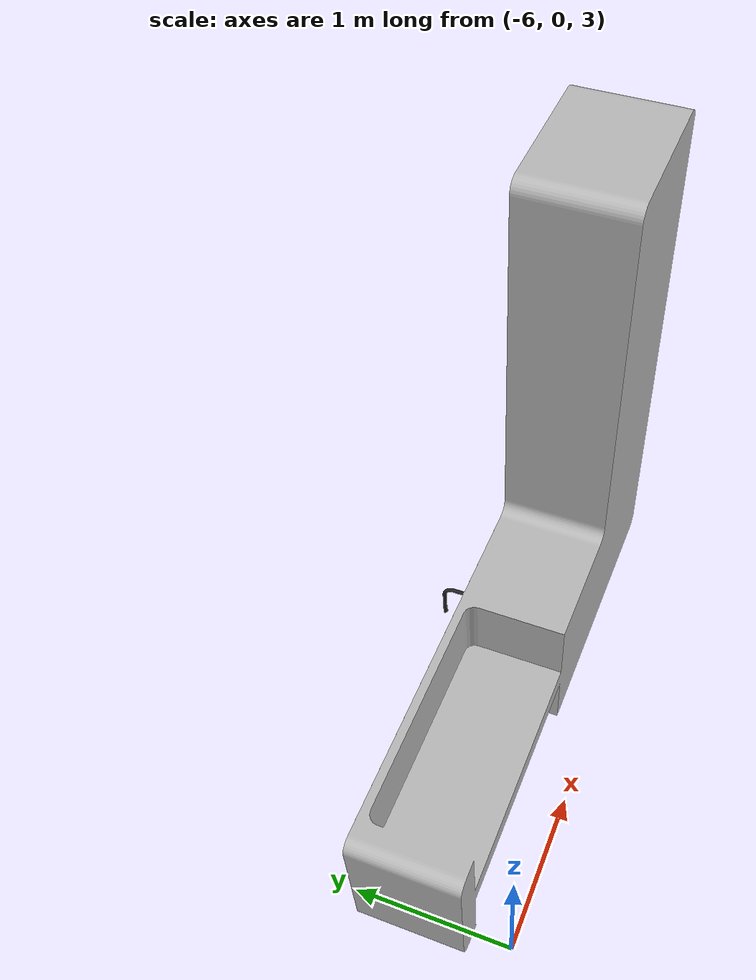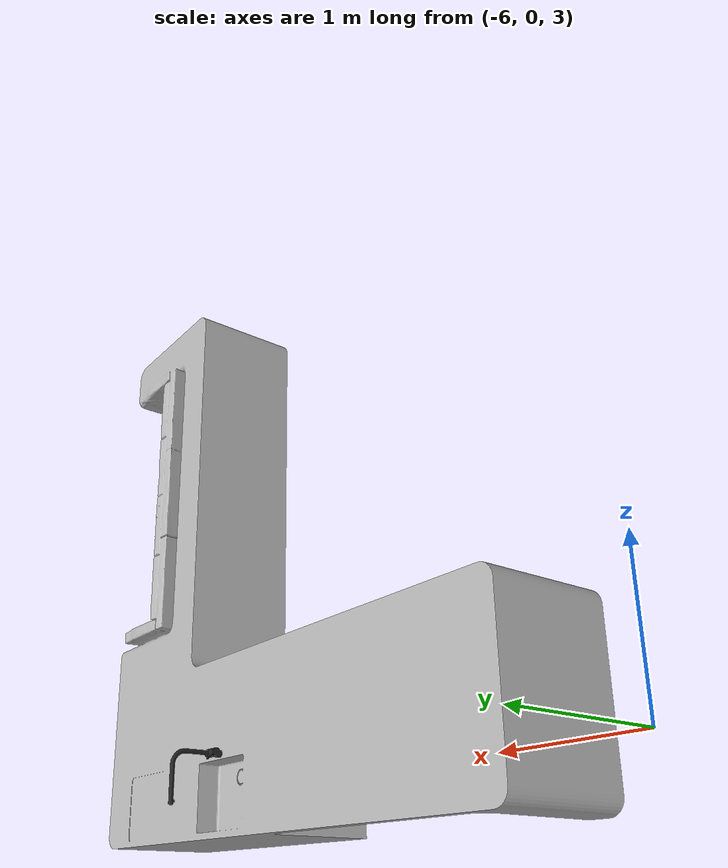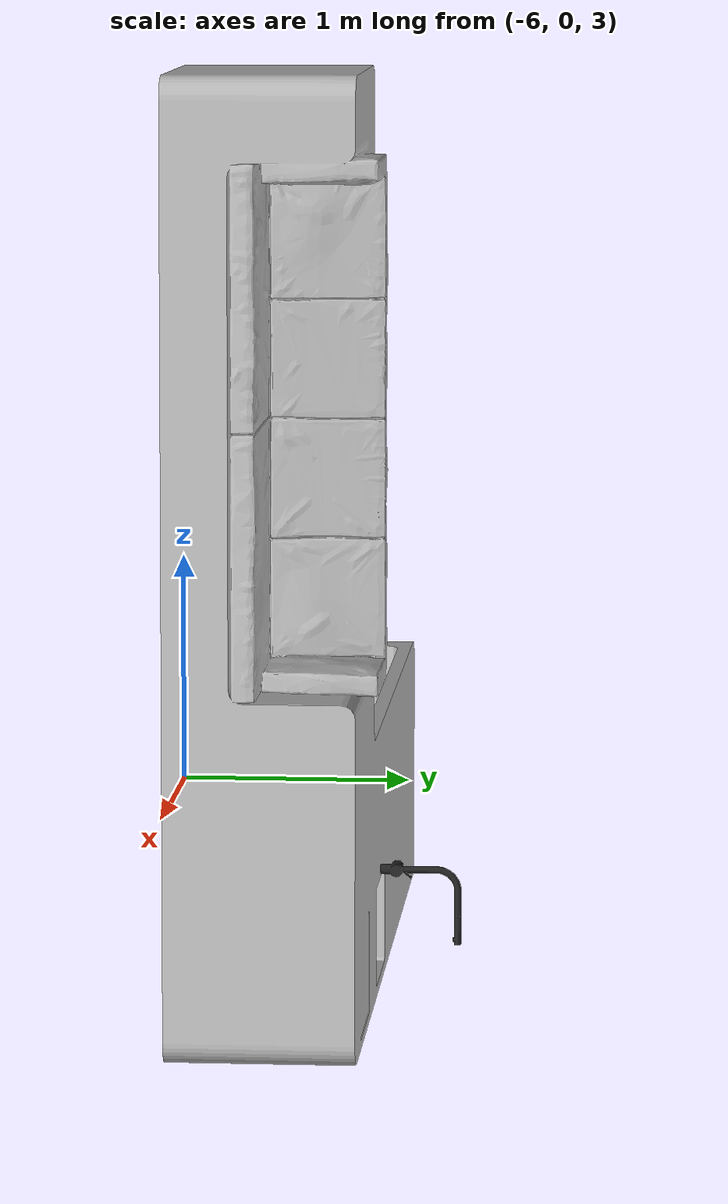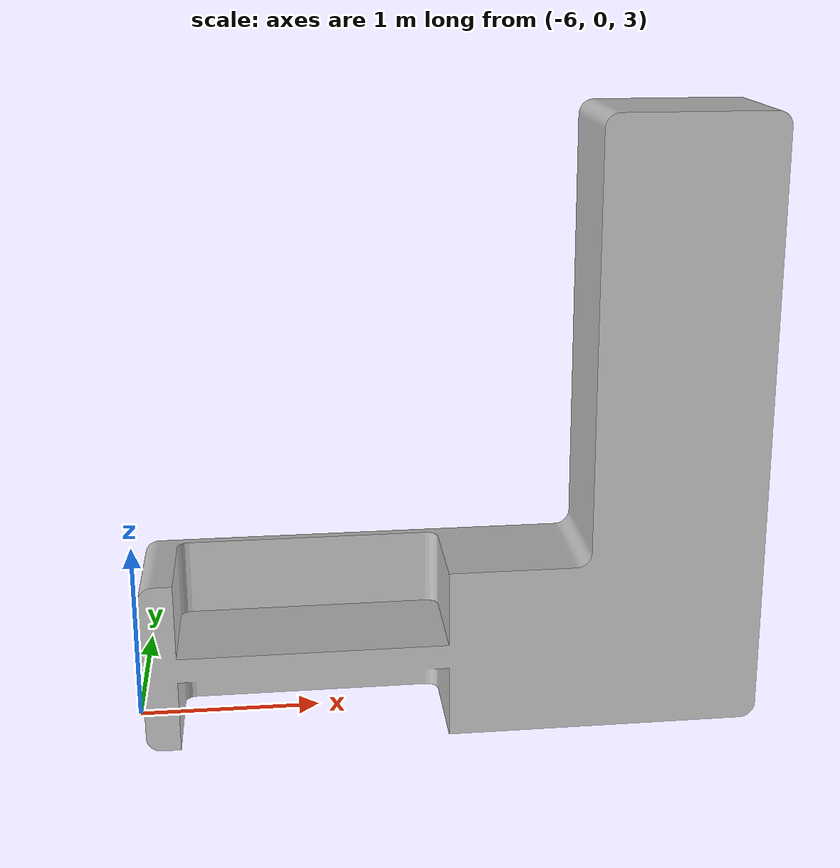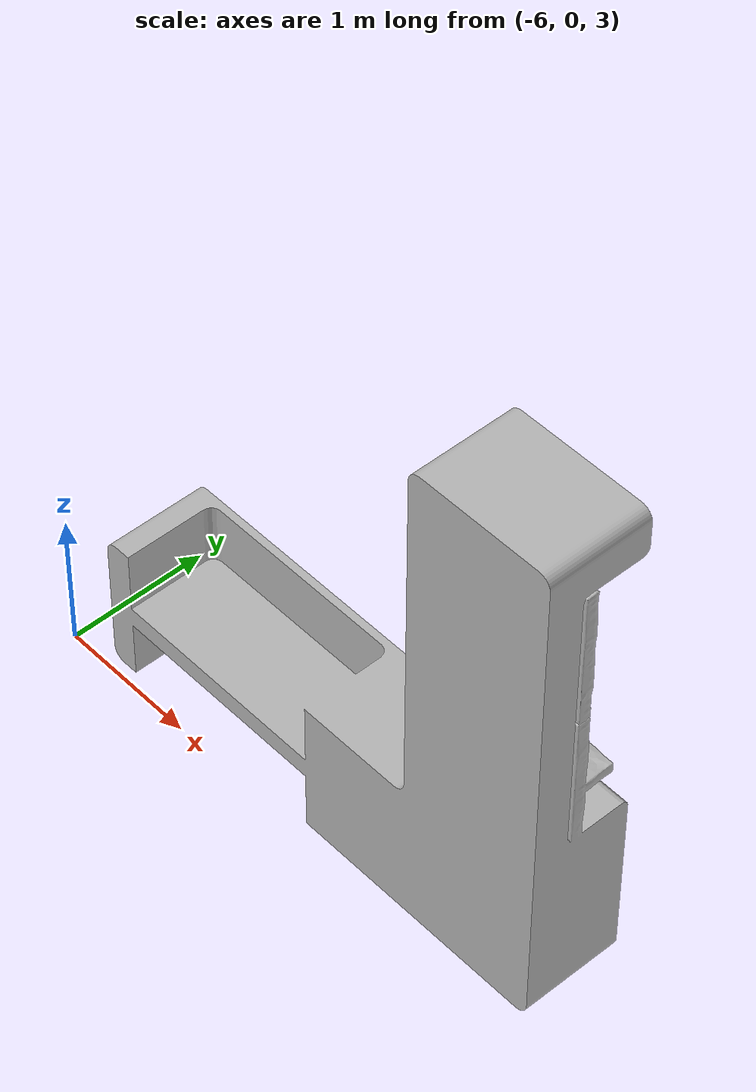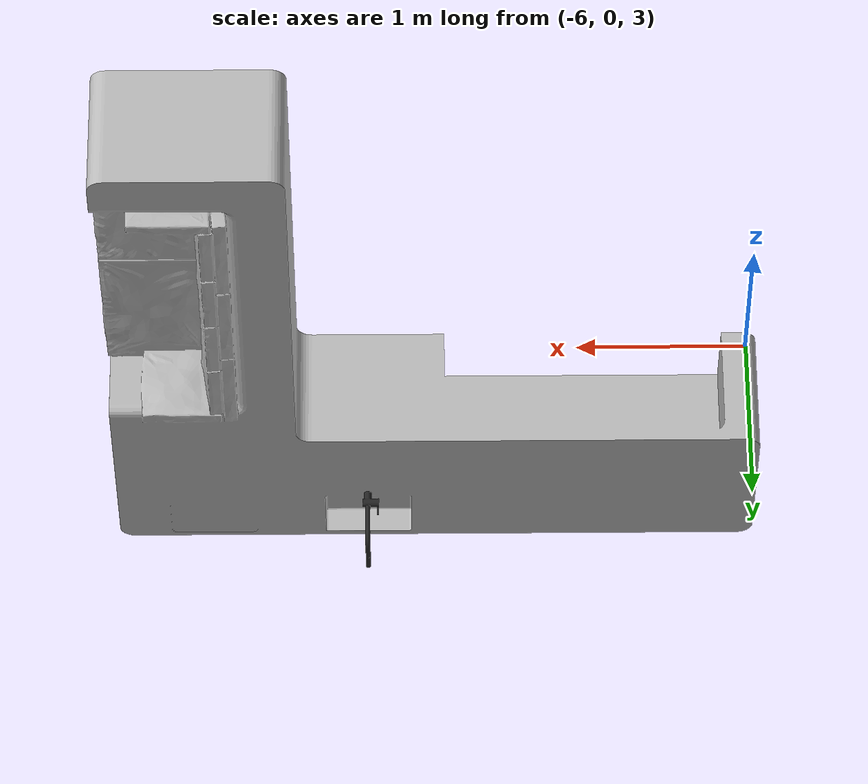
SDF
<?xml version="1.0" ?>
<sdf version="1.4">
    <model name="centralunit">
      <static>true</static>
      <!-- Geometry of centralunit is the same as that of room. -->
      <link name="body">
        <visual name="visual">
          <geometry>
            <mesh><uri>model://centralunit/centralunit.dae</uri></mesh>
          </geometry>
        </visual>
        <collision name='armrest_sofa_r'>
          <pose>-2.820 0.6725 6.171 0 0 0</pose>
          <geometry>
            <box>
              <size>1.05 0.7 0.26</size>
            </box>
          </geometry>
          <max_contacts>10</max_contacts>
          <surface>
            <bounce/>
            <contact>
              <ode/>
            </contact>
            <friction>
              <ode>
                <mu>100</mu>
                <mu2>50</mu2>
              </ode>
            </friction>
          </surface>
        </collision>
        <collision name='sofa_back'>
          <pose>-3.215 0.6725 4.981 0 0 0</pose>
          <geometry>
            <box>
              <size>0.26 0.7 2.12</size>
            </box>
          </geometry>
          <max_contacts>10</max_contacts>
          <surface>
            <bounce/>
            <contact>
              <ode/>
            </contact>
            <friction>
              <ode>
                <mu>100</mu>
                <mu2>50</mu2>
              </ode>
            </friction>
          </surface>
        </collision>
        <collision name='sofa_front'>
          <pose>-2.69 0.45 4.981 0 0 0</pose>
          <geometry>
            <box>
              <size>0.79 0.3 2.0</size> <!-- x=50+630+50+60 y=0.2 + 0.1(cushion) z=50+1900+50 -->
            </box>
          </geometry>
          <max_contacts>10</max_contacts>
          <surface>
            <bounce/>
            <contact>
              <ode/>
            </contact>
            <friction>
              <ode>
                <mu>100</mu>
                <mu2>50</mu2>
              </ode>
            </friction>
          </surface>
        </collision>
        <collision name='armrest_sofa_l'>
          <pose>-2.820 0.6725 3.791 0 0 0</pose>
          <geometry>
            <box>
              <size>1.05 0.7 0.26</size>
            </box>
          </geometry>
          <max_contacts>10</max_contacts>
          <surface>
            <bounce/>
            <contact>
              <ode/>
            </contact>
            <friction>
              <ode>
                <mu>100</mu>
                <mu2>50</mu2>
              </ode>
            </friction>
          </surface>
        </collision>
        <collision name='stove_corner'>
          <pose>-2.820 0.6725 3.136 0 0 0</pose> <!-- x=800+1495+(1050/2) y=0.3+(0.7/2)+pad because height of cent'unit doesn't match. z=1711+2650+2540-600-260-2120-260-(1050/2) -->
          <geometry>
            <box>
              <size>1.05 0.7 1.05</size>
            </box>
          </geometry>
          <max_contacts>10</max_contacts>
          <surface>
            <bounce/>
            <contact>
              <ode/>
            </contact>
            <friction>
              <ode>
                <mu>100</mu>
                <mu2>50</mu2>
              </ode>
            </friction>
          </surface>
        </collision>
        <collision name='kitchensink_corner'>
          <pose>-3.77 0.6725 3.136 0 0 0</pose>
          <geometry>
            <box>
              <size>0.85 0.7 1.05</size>
            </box>
          </geometry>
          <max_contacts>10</max_contacts>
          <surface>
            <bounce/>
            <contact>
              <ode/>
            </contact>
            <friction>
              <ode>
                <mu>100</mu>
                <mu2>50</mu2>
              </ode>
            </friction>
          </surface>
        </collision>
        <collision name='desk_middle_beam'>
          <pose>-4.995 0.625 3.136 0 0 0</pose>
          <geometry>
            <box>
              <size>1.6 0.65 0.17</size> <!-- y=700-50(top plate)  -->
            </box>
          </geometry>
          <max_contacts>10</max_contacts>
          <surface>
            <bounce/>
            <contact>
              <ode/>
            </contact>
            <friction>
              <ode>
                <mu>100</mu>
                <mu2>50</mu2>
              </ode>
            </friction>
          </surface>
        </collision>
        <collision name='desk_topplate'>
          <pose>-4.995 0.975 3.136 0 0 0</pose>
          <geometry>
            <box>
              <size>1.6 0.05 1.05</size>
            </box>
          </geometry>
          <max_contacts>10</max_contacts>
          <surface>
            <bounce/>
            <contact>
              <ode/>
            </contact>
            <friction>
              <ode>
                <mu>100</mu>
                <mu2>50</mu2>
              </ode>
            </friction>
          </surface>
        </collision>
        <collision name='desk_corner'>
          <pose>-5.895 0.6725 3.136 0 0 0</pose>
          <geometry>
            <box>
              <size>0.2 0.7 1.05</size>
            </box>
          </geometry>
          <max_contacts>10</max_contacts>
          <surface>
            <bounce/>
            <contact>
              <ode/>
            </contact>
            <friction>
              <ode>
                <mu>100</mu>
                <mu2>50</mu2>
              </ode>
            </friction>
          </surface>
        </collision>
      </link>
    </model>
</sdf>
